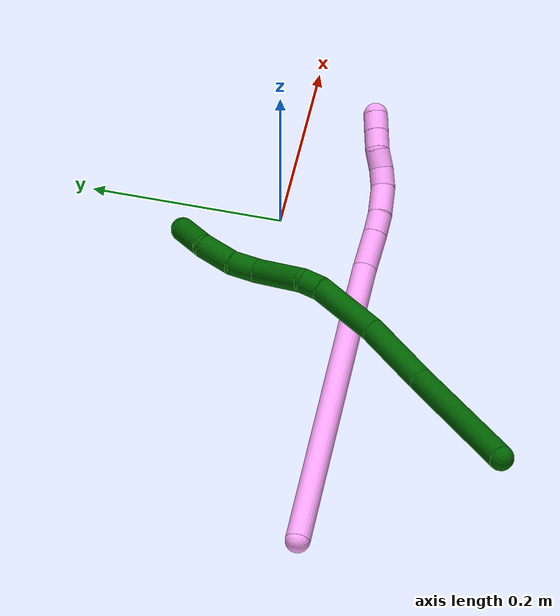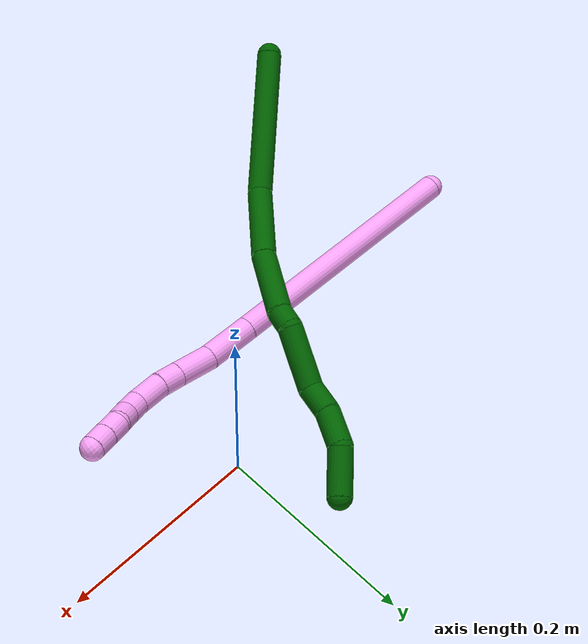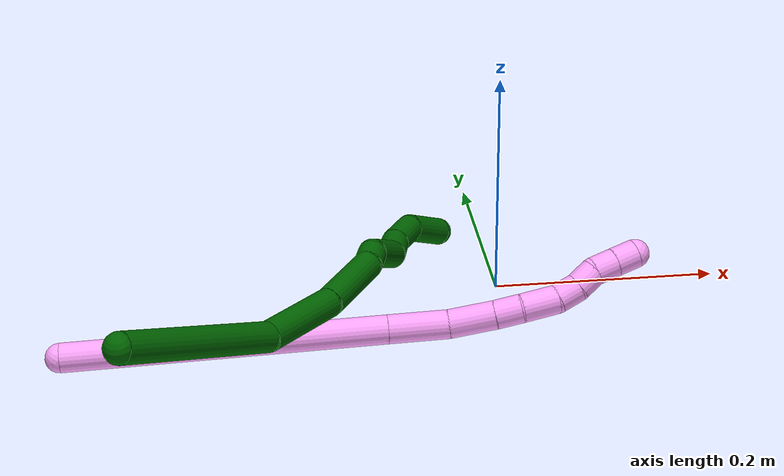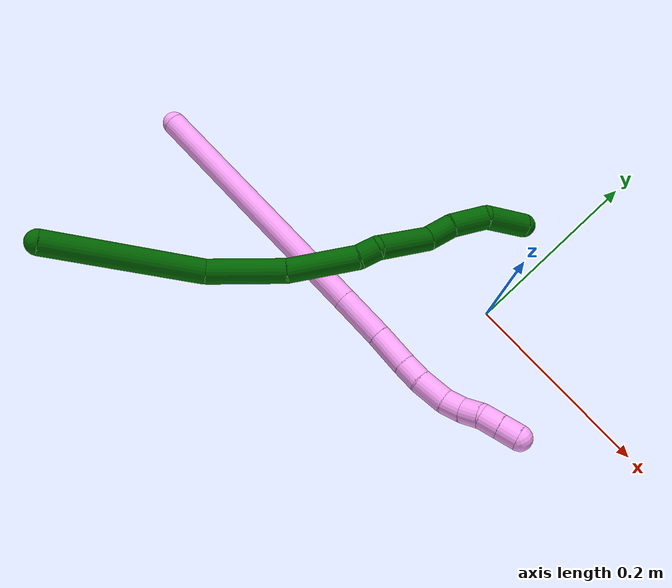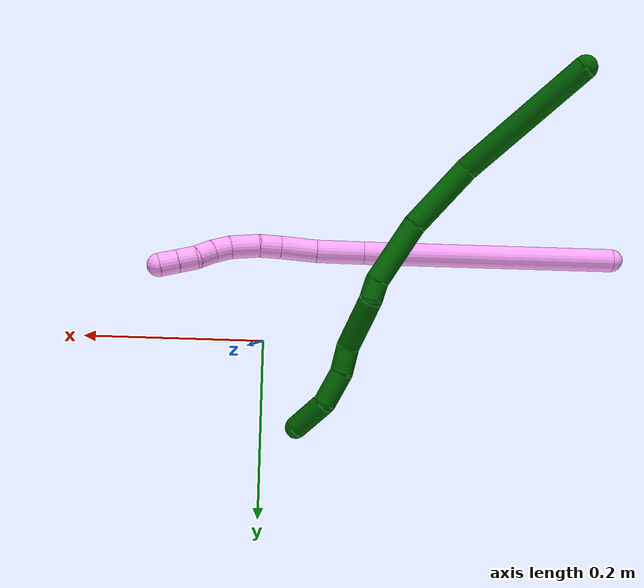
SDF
<sdf version="1.7">
 <world name="default">
  <model name="4">
   <static>0</static>
   <link name="4">
    <collision name="collision-cylinder-e_1_1_4">
     <pose>0.0741 -0.011994 -0.114113 3.03687 0.573415 2.78974</pose>
     <geometry><cylinder><radius>0.0125</radius><length>0.273177</length></cylinder></geometry>
     <surface>
      <friction><ode><mu>1.16</mu><mu2>1.16</mu2><slip1>0</slip1><slip2>0</slip2></ode></friction>
      <contact><ode><kp>1e+06</kp><kd>1</kd><max_vel>0</max_vel><min_depth>0.001</min_depth></ode></contact>
     </surface>
    </collision>
    <visual name="visual-cylinder-e_1_1_4">
     <pose>0.0741 -0.011994 -0.114113 3.03687 0.573415 2.78974</pose>
     <geometry><cylinder><radius>0.0125</radius><length>0.273177</length></cylinder></geometry>
     <material><ambient>1 0.65098 0.996078 1</ambient></material>
    </visual>
    <collision name="collision-cylinder-e_2_4_5">
     <pose>0.162219 -0.026444 -0.249934 3.02897 0.57054 2.76178</pose>
     <geometry><cylinder><radius>0.0125</radius><length>0.051916</length></cylinder></geometry>
     <surface>
      <friction><ode><mu>1.16</mu><mu2>1.16</mu2><slip1>0</slip1><slip2>0</slip2></ode></friction>
      <contact><ode><kp>1e+06</kp><kd>1</kd><max_vel>0</max_vel><min_depth>0.001</min_depth></ode></contact>
     </surface>
    </collision>
    <visual name="visual-cylinder-e_2_4_5">
     <pose>0.162219 -0.026444 -0.249934 3.02897 0.57054 2.76178</pose>
     <geometry><cylinder><radius>0.0125</radius><length>0.051916</length></cylinder></geometry>
     <material><ambient>1 0.65098 0.996078 1</ambient></material>
    </visual>
    <collision name="collision-cylinder-e_3_5_6">
     <pose>0.188518 -0.033521 -0.286885 2.84721 0.656756 2.32071</pose>
     <geometry><cylinder><radius>0.0125</radius><length>0.040225</length></cylinder></geometry>
     <surface>
      <friction><ode><mu>1.16</mu><mu2>1.16</mu2><slip1>0</slip1><slip2>0</slip2></ode></friction>
      <contact><ode><kp>1e+06</kp><kd>1</kd><max_vel>0</max_vel><min_depth>0.001</min_depth></ode></contact>
     </surface>
    </collision>
    <visual name="visual-cylinder-e_3_5_6">
     <pose>0.188518 -0.033521 -0.286885 2.84721 0.656756 2.32071</pose>
     <geometry><cylinder><radius>0.0125</radius><length>0.040225</length></cylinder></geometry>
     <material><ambient>1 0.65098 0.996078 1</ambient></material>
    </visual>
    <collision name="collision-cylinder-e_4_6_7">
     <pose>0.208254 -0.040666 -0.310515 2.84936 0.705275 2.38077</pose>
     <geometry><cylinder><radius>0.0125</radius><length>0.023002</length></cylinder></geometry>
     <surface>
      <friction><ode><mu>1.16</mu><mu2>1.16</mu2><slip1>0</slip1><slip2>0</slip2></ode></friction>
      <contact><ode><kp>1e+06</kp><kd>1</kd><max_vel>0</max_vel><min_depth>0.001</min_depth></ode></contact>
     </surface>
    </collision>
    <visual name="visual-cylinder-e_4_6_7">
     <pose>0.208254 -0.040666 -0.310515 2.84936 0.705275 2.38077</pose>
     <geometry><cylinder><radius>0.0125</radius><length>0.023002</length></cylinder></geometry>
     <material><ambient>1 0.65098 0.996078 1</ambient></material>
    </visual>
    <collision name="collision-cylinder-e_5_7_8">
     <pose>0.226266 -0.044466 -0.330395 3.0309 0.739891 2.85778</pose>
     <geometry><cylinder><radius>0.0125</radius><length>0.031317</length></cylinder></geometry>
     <surface>
      <friction><ode><mu>1.16</mu><mu2>1.16</mu2><slip1>0</slip1><slip2>0</slip2></ode></friction>
      <contact><ode><kp>1e+06</kp><kd>1</kd><max_vel>0</max_vel><min_depth>0.001</min_depth></ode></contact>
     </surface>
    </collision>
    <visual name="visual-cylinder-e_5_7_8">
     <pose>0.226266 -0.044466 -0.330395 3.0309 0.739891 2.85778</pose>
     <geometry><cylinder><radius>0.0125</radius><length>0.031317</length></cylinder></geometry>
     <material><ambient>1 0.65098 0.996078 1</ambient></material>
    </visual>
    <collision name="collision-cylinder-e_6_8_9">
     <pose>0.245359 -0.046019 -0.347251 3.09042 1.00921 3.04898</pose>
     <geometry><cylinder><radius>0.0125</radius><length>0.020168</length></cylinder></geometry>
     <surface>
      <friction><ode><mu>1.16</mu><mu2>1.16</mu2><slip1>0</slip1><slip2>0</slip2></ode></friction>
      <contact><ode><kp>1e+06</kp><kd>1</kd><max_vel>0</max_vel><min_depth>0.001</min_depth></ode></contact>
     </surface>
    </collision>
    <visual name="visual-cylinder-e_6_8_9">
     <pose>0.245359 -0.046019 -0.347251 3.09042 1.00921 3.04898</pose>
     <geometry><cylinder><radius>0.0125</radius><length>0.020168</length></cylinder></geometry>
     <material><ambient>1 0.65098 0.996078 1</ambient></material>
    </visual>
    <collision name="collision-cylinder-e_7_9_10">
     <pose>0.263416 -0.046575 -0.355919 3.05647 1.2356 3.02187</pose>
     <geometry><cylinder><radius>0.0125</radius><length>0.020166</length></cylinder></geometry>
     <surface>
      <friction><ode><mu>1.16</mu><mu2>1.16</mu2><slip1>0</slip1><slip2>0</slip2></ode></friction>
      <contact><ode><kp>1e+06</kp><kd>1</kd><max_vel>0</max_vel><min_depth>0.001</min_depth></ode></contact>
     </surface>
    </collision>
    <visual name="visual-cylinder-e_7_9_10">
     <pose>0.263416 -0.046575 -0.355919 3.05647 1.2356 3.02187</pose>
     <geometry><cylinder><radius>0.0125</radius><length>0.020166</length></cylinder></geometry>
     <material><ambient>1 0.65098 0.996078 1</ambient></material>
    </visual>
    <collision name="collision-cylinder-e_8_10_11">
     <pose>0.280791 -0.046936 -0.365427 3.12884 0.902223 3.11527</pose>
     <geometry><cylinder><radius>0.0125</radius><length>0.020016</length></cylinder></geometry>
     <surface>
      <friction><ode><mu>1.16</mu><mu2>1.16</mu2><slip1>0</slip1><slip2>0</slip2></ode></friction>
      <contact><ode><kp>1e+06</kp><kd>1</kd><max_vel>0</max_vel><min_depth>0.001</min_depth></ode></contact>
     </surface>
    </collision>
    <visual name="visual-cylinder-e_8_10_11">
     <pose>0.280791 -0.046936 -0.365427 3.12884 0.902223 3.11527</pose>
     <geometry><cylinder><radius>0.0125</radius><length>0.020016</length></cylinder></geometry>
     <material><ambient>1 0.65098 0.996078 1</ambient></material>
    </visual>
    <collision name="collision-cylinder-e_9_11_2">
     <pose>0.296466 -0.047119 -0.37787 3.12506 0.897316 3.10726</pose>
     <geometry><cylinder><radius>0.0125</radius><length>0.020013</length></cylinder></geometry>
     <surface>
      <friction><ode><mu>1.16</mu><mu2>1.16</mu2><slip1>0</slip1><slip2>0</slip2></ode></friction>
      <contact><ode><kp>1e+06</kp><kd>1</kd><max_vel>0</max_vel><min_depth>0.001</min_depth></ode></contact>
     </surface>
    </collision>
    <visual name="visual-cylinder-e_9_11_2">
     <pose>0.296466 -0.047119 -0.37787 3.12506 0.897316 3.10726</pose>
     <geometry><cylinder><radius>0.0125</radius><length>0.020013</length></cylinder></geometry>
     <material><ambient>1 0.65098 0.996078 1</ambient></material>
    </visual>
    <collision name="collision-sphere-2">
     <pose>0.304287 -0.047222 -0.38411 0 -0 0</pose>
     <geometry><sphere><radius>0.0125</radius></sphere></geometry>
     <surface>
      <friction><ode><mu>1.16</mu><mu2>1.16</mu2><slip1>0</slip1><slip2>0</slip2></ode></friction>
      <contact><ode><kp>1e+06</kp><kd>1</kd><max_vel>0</max_vel><min_depth>0.001</min_depth></ode></contact>
     </surface>
    </collision>
    <visual name="visual-sphere-2">
     <pose>0.304287 -0.047222 -0.38411 0 -0 0</pose>
     <geometry><sphere><radius>0.0125</radius></sphere></geometry>
     <material><ambient>1 0.65098 0.996078 1</ambient></material>
    </visual>
    <collision name="collision-sphere-11">
     <pose>0.288644 -0.047015 -0.37163 0 -0 0</pose>
     <geometry><sphere><radius>0.0125</radius></sphere></geometry>
     <surface>
      <friction><ode><mu>1.16</mu><mu2>1.16</mu2><slip1>0</slip1><slip2>0</slip2></ode></friction>
      <contact><ode><kp>1e+06</kp><kd>1</kd><max_vel>0</max_vel><min_depth>0.001</min_depth></ode></contact>
     </surface>
    </collision>
    <visual name="visual-sphere-11">
     <pose>0.288644 -0.047015 -0.37163 0 -0 0</pose>
     <geometry><sphere><radius>0.0125</radius></sphere></geometry>
     <material><ambient>1 0.65098 0.996078 1</ambient></material>
    </visual>
    <collision name="collision-sphere-10">
     <pose>0.272938 -0.046857 -0.359224 0 -0 0</pose>
     <geometry><sphere><radius>0.0125</radius></sphere></geometry>
     <surface>
      <friction><ode><mu>1.16</mu><mu2>1.16</mu2><slip1>0</slip1><slip2>0</slip2></ode></friction>
      <contact><ode><kp>1e+06</kp><kd>1</kd><max_vel>0</max_vel><min_depth>0.001</min_depth></ode></contact>
     </surface>
    </collision>
    <visual name="visual-sphere-10">
     <pose>0.272938 -0.046857 -0.359224 0 -0 0</pose>
     <geometry><sphere><radius>0.0125</radius></sphere></geometry>
     <material><ambient>1 0.65098 0.996078 1</ambient></material>
    </visual>
    <collision name="collision-sphere-9">
     <pose>0.253894 -0.046293 -0.352614 0 -0 0</pose>
     <geometry><sphere><radius>0.0125</radius></sphere></geometry>
     <surface>
      <friction><ode><mu>1.16</mu><mu2>1.16</mu2><slip1>0</slip1><slip2>0</slip2></ode></friction>
      <contact><ode><kp>1e+06</kp><kd>1</kd><max_vel>0</max_vel><min_depth>0.001</min_depth></ode></contact>
     </surface>
    </collision>
    <visual name="visual-sphere-9">
     <pose>0.253894 -0.046293 -0.352614 0 -0 0</pose>
     <geometry><sphere><radius>0.0125</radius></sphere></geometry>
     <material><ambient>1 0.65098 0.996078 1</ambient></material>
    </visual>
    <collision name="collision-sphere-4">
     <pose>0.1482 -0.023989 -0.228226 0 -0 0</pose>
     <geometry><sphere><radius>0.0125</radius></sphere></geometry>
     <surface>
      <friction><ode><mu>1.16</mu><mu2>1.16</mu2><slip1>0</slip1><slip2>0</slip2></ode></friction>
      <contact><ode><kp>1e+06</kp><kd>1</kd><max_vel>0</max_vel><min_depth>0.001</min_depth></ode></contact>
     </surface>
    </collision>
    <visual name="visual-sphere-4">
     <pose>0.1482 -0.023989 -0.228226 0 -0 0</pose>
     <geometry><sphere><radius>0.0125</radius></sphere></geometry>
     <material><ambient>1 0.65098 0.996078 1</ambient></material>
    </visual>
    <collision name="collision-sphere-1">
     <geometry><sphere><radius>0.0125</radius></sphere></geometry>
     <surface>
      <friction><ode><mu>1.16</mu><mu2>1.16</mu2><slip1>0</slip1><slip2>0</slip2></ode></friction>
      <contact><ode><kp>1e+06</kp><kd>1</kd><max_vel>0</max_vel><min_depth>0.001</min_depth></ode></contact>
     </surface>
    </collision>
    <visual name="visual-sphere-1">
     <geometry><sphere><radius>0.0125</radius></sphere></geometry>
     <material><ambient>1 0.65098 0.996078 1</ambient></material>
    </visual>
    <collision name="collision-sphere-8">
     <pose>0.236823 -0.045744 -0.341888 0 -0 0</pose>
     <geometry><sphere><radius>0.0125</radius></sphere></geometry>
     <surface>
      <friction><ode><mu>1.16</mu><mu2>1.16</mu2><slip1>0</slip1><slip2>0</slip2></ode></friction>
      <contact><ode><kp>1e+06</kp><kd>1</kd><max_vel>0</max_vel><min_depth>0.001</min_depth></ode></contact>
     </surface>
    </collision>
    <visual name="visual-sphere-8">
     <pose>0.236823 -0.045744 -0.341888 0 -0 0</pose>
     <geometry><sphere><radius>0.0125</radius></sphere></geometry>
     <material><ambient>1 0.65098 0.996078 1</ambient></material>
    </visual>
    <collision name="collision-sphere-5">
     <pose>0.176239 -0.028899 -0.271642 0 -0 0</pose>
     <geometry><sphere><radius>0.0125</radius></sphere></geometry>
     <surface>
      <friction><ode><mu>1.16</mu><mu2>1.16</mu2><slip1>0</slip1><slip2>0</slip2></ode></friction>
      <contact><ode><kp>1e+06</kp><kd>1</kd><max_vel>0</max_vel><min_depth>0.001</min_depth></ode></contact>
     </surface>
    </collision>
    <visual name="visual-sphere-5">
     <pose>0.176239 -0.028899 -0.271642 0 -0 0</pose>
     <geometry><sphere><radius>0.0125</radius></sphere></geometry>
     <material><ambient>1 0.65098 0.996078 1</ambient></material>
    </visual>
    <collision name="collision-sphere-6">
     <pose>0.200798 -0.038143 -0.302129 0 -0 0</pose>
     <geometry><sphere><radius>0.0125</radius></sphere></geometry>
     <surface>
      <friction><ode><mu>1.16</mu><mu2>1.16</mu2><slip1>0</slip1><slip2>0</slip2></ode></friction>
      <contact><ode><kp>1e+06</kp><kd>1</kd><max_vel>0</max_vel><min_depth>0.001</min_depth></ode></contact>
     </surface>
    </collision>
    <visual name="visual-sphere-6">
     <pose>0.200798 -0.038143 -0.302129 0 -0 0</pose>
     <geometry><sphere><radius>0.0125</radius></sphere></geometry>
     <material><ambient>1 0.65098 0.996078 1</ambient></material>
    </visual>
    <collision name="collision-sphere-7">
     <pose>0.215709 -0.043189 -0.318901 0 -0 0</pose>
     <geometry><sphere><radius>0.0125</radius></sphere></geometry>
     <surface>
      <friction><ode><mu>1.16</mu><mu2>1.16</mu2><slip1>0</slip1><slip2>0</slip2></ode></friction>
      <contact><ode><kp>1e+06</kp><kd>1</kd><max_vel>0</max_vel><min_depth>0.001</min_depth></ode></contact>
     </surface>
    </collision>
    <visual name="visual-sphere-7">
     <pose>0.215709 -0.043189 -0.318901 0 -0 0</pose>
     <geometry><sphere><radius>0.0125</radius></sphere></geometry>
     <material><ambient>1 0.65098 0.996078 1</ambient></material>
    </visual>
    <inertial>
     <pose>0.139875 -0.024151 -0.204471 0 -0 0</pose>
     <mass>0.5</mass>
     <inertia>
      <ixx>-0.00084</ixx>
      <ixy>0</ixy>
      <ixz>0</ixz>
      <iyy>0.00216</iyy>
      <iyz>0</iyz>
      <izz>-0.000824</izz>
     </inertia>
    </inertial>
   </link>
   <pose>-0.38218 -0.100158 0.011498 -0.863412 -0.760979 0.765434</pose>
  </model>
  <model name="6">
   <static>0</static>
   <link name="6">
    <collision name="collision-cylinder-e_1_1_4">
     <pose>0.052013 0.039598 -0.039987 -2.36108 0.746056 -1.52096</pose>
     <geometry><cylinder><radius>0.0125</radius><length>0.153262</length></cylinder></geometry>
     <surface>
      <friction><ode><mu>1.16</mu><mu2>1.16</mu2><slip1>0</slip1><slip2>0</slip2></ode></friction>
      <contact><ode><kp>1e+06</kp><kd>1</kd><max_vel>0</max_vel><min_depth>0.001</min_depth></ode></contact>
     </surface>
    </collision>
    <visual name="visual-cylinder-e_1_1_4">
     <pose>0.052013 0.039598 -0.039987 -2.36108 0.746056 -1.52096</pose>
     <geometry><cylinder><radius>0.0125</radius><length>0.153262</length></cylinder></geometry>
     <material><ambient>0 0.392157 0.003922 1</ambient></material>
    </visual>
    <collision name="collision-cylinder-e_2_4_5">
     <pose>0.13025 0.106658 -0.0905 -1.93685 0.728194 -1.01214</pose>
     <geometry><cylinder><radius>0.0125</radius><length>0.078807</length></cylinder></geometry>
     <surface>
      <friction><ode><mu>1.16</mu><mu2>1.16</mu2><slip1>0</slip1><slip2>0</slip2></ode></friction>
      <contact><ode><kp>1e+06</kp><kd>1</kd><max_vel>0</max_vel><min_depth>0.001</min_depth></ode></contact>
     </surface>
    </collision>
    <visual name="visual-cylinder-e_2_4_5">
     <pose>0.13025 0.106658 -0.0905 -1.93685 0.728194 -1.01214</pose>
     <geometry><cylinder><radius>0.0125</radius><length>0.078807</length></cylinder></geometry>
     <material><ambient>0 0.392157 0.003922 1</ambient></material>
    </visual>
    <collision name="collision-cylinder-e_3_5_6">
     <pose>0.175827 0.163096 -0.108136 -1.81138 0.57542 -0.721564</pose>
     <geometry><cylinder><radius>0.0125</radius><length>0.071128</length></cylinder></geometry>
     <surface>
      <friction><ode><mu>1.16</mu><mu2>1.16</mu2><slip1>0</slip1><slip2>0</slip2></ode></friction>
      <contact><ode><kp>1e+06</kp><kd>1</kd><max_vel>0</max_vel><min_depth>0.001</min_depth></ode></contact>
     </surface>
    </collision>
    <visual name="visual-cylinder-e_3_5_6">
     <pose>0.175827 0.163096 -0.108136 -1.81138 0.57542 -0.721564</pose>
     <geometry><cylinder><radius>0.0125</radius><length>0.071128</length></cylinder></geometry>
     <material><ambient>0 0.392157 0.003922 1</ambient></material>
    </visual>
    <collision name="collision-cylinder-e_4_6_7">
     <pose>0.198221 0.201758 -0.117397 -1.78941 0.297392 -0.369218</pose>
     <geometry><cylinder><radius>0.0125</radius><length>0.020751</length></cylinder></geometry>
     <surface>
      <friction><ode><mu>1.16</mu><mu2>1.16</mu2><slip1>0</slip1><slip2>0</slip2></ode></friction>
      <contact><ode><kp>1e+06</kp><kd>1</kd><max_vel>0</max_vel><min_depth>0.001</min_depth></ode></contact>
     </surface>
    </collision>
    <visual name="visual-cylinder-e_4_6_7">
     <pose>0.198221 0.201758 -0.117397 -1.78941 0.297392 -0.369218</pose>
     <geometry><cylinder><radius>0.0125</radius><length>0.020751</length></cylinder></geometry>
     <material><ambient>0 0.392157 0.003922 1</ambient></material>
    </visual>
    <collision name="collision-cylinder-e_5_7_8">
     <pose>0.211448 0.232836 -0.139281 -2.31582 0.336652 -0.740098</pose>
     <geometry><cylinder><radius>0.0125</radius><length>0.061672</length></cylinder></geometry>
     <surface>
      <friction><ode><mu>1.16</mu><mu2>1.16</mu2><slip1>0</slip1><slip2>0</slip2></ode></friction>
      <contact><ode><kp>1e+06</kp><kd>1</kd><max_vel>0</max_vel><min_depth>0.001</min_depth></ode></contact>
     </surface>
    </collision>
    <visual name="visual-cylinder-e_5_7_8">
     <pose>0.211448 0.232836 -0.139281 -2.31582 0.336652 -0.740098</pose>
     <geometry><cylinder><radius>0.0125</radius><length>0.061672</length></cylinder></geometry>
     <material><ambient>0 0.392157 0.003922 1</ambient></material>
    </visual>
    <collision name="collision-cylinder-e_6_8_9">
     <pose>0.224808 0.267745 -0.163357 -1.88173 0.22004 -0.300769</pose>
     <geometry><cylinder><radius>0.0125</radius><length>0.029092</length></cylinder></geometry>
     <surface>
      <friction><ode><mu>1.16</mu><mu2>1.16</mu2><slip1>0</slip1><slip2>0</slip2></ode></friction>
      <contact><ode><kp>1e+06</kp><kd>1</kd><max_vel>0</max_vel><min_depth>0.001</min_depth></ode></contact>
     </surface>
    </collision>
    <visual name="visual-cylinder-e_6_8_9">
     <pose>0.224808 0.267745 -0.163357 -1.88173 0.22004 -0.300769</pose>
     <geometry><cylinder><radius>0.0125</radius><length>0.029092</length></cylinder></geometry>
     <material><ambient>0 0.392157 0.003922 1</ambient></material>
    </visual>
    <collision name="collision-cylinder-e_7_9_10">
     <pose>0.236817 0.297239 -0.173498 -1.91884 0.479261 -0.670768</pose>
     <geometry><cylinder><radius>0.0125</radius><length>0.038315</length></cylinder></geometry>
     <surface>
      <friction><ode><mu>1.16</mu><mu2>1.16</mu2><slip1>0</slip1><slip2>0</slip2></ode></friction>
      <contact><ode><kp>1e+06</kp><kd>1</kd><max_vel>0</max_vel><min_depth>0.001</min_depth></ode></contact>
     </surface>
    </collision>
    <visual name="visual-cylinder-e_7_9_10">
     <pose>0.236817 0.297239 -0.173498 -1.91884 0.479261 -0.670768</pose>
     <geometry><cylinder><radius>0.0125</radius><length>0.038315</length></cylinder></geometry>
     <material><ambient>0 0.392157 0.003922 1</ambient></material>
    </visual>
    <collision name="collision-cylinder-e_8_10_2">
     <pose>0.260254 0.325094 -0.193344 -2.43985 0.670992 -1.52228</pose>
     <geometry><cylinder><radius>0.0125</radius><length>0.046974</length></cylinder></geometry>
     <surface>
      <friction><ode><mu>1.16</mu><mu2>1.16</mu2><slip1>0</slip1><slip2>0</slip2></ode></friction>
      <contact><ode><kp>1e+06</kp><kd>1</kd><max_vel>0</max_vel><min_depth>0.001</min_depth></ode></contact>
     </surface>
    </collision>
    <visual name="visual-cylinder-e_8_10_2">
     <pose>0.260254 0.325094 -0.193344 -2.43985 0.670992 -1.52228</pose>
     <geometry><cylinder><radius>0.0125</radius><length>0.046974</length></cylinder></geometry>
     <material><ambient>0 0.392157 0.003922 1</ambient></material>
    </visual>
    <collision name="collision-sphere-2">
     <pose>0.274858 0.336969 -0.207393 0 -0 0</pose>
     <geometry><sphere><radius>0.0125</radius></sphere></geometry>
     <surface>
      <friction><ode><mu>1.16</mu><mu2>1.16</mu2><slip1>0</slip1><slip2>0</slip2></ode></friction>
      <contact><ode><kp>1e+06</kp><kd>1</kd><max_vel>0</max_vel><min_depth>0.001</min_depth></ode></contact>
     </surface>
    </collision>
    <visual name="visual-sphere-2">
     <pose>0.274858 0.336969 -0.207393 0 -0 0</pose>
     <geometry><sphere><radius>0.0125</radius></sphere></geometry>
     <material><ambient>0 0.392157 0.003922 1</ambient></material>
    </visual>
    <collision name="collision-sphere-10">
     <pose>0.245651 0.313219 -0.179295 0 -0 0</pose>
     <geometry><sphere><radius>0.0125</radius></sphere></geometry>
     <surface>
      <friction><ode><mu>1.16</mu><mu2>1.16</mu2><slip1>0</slip1><slip2>0</slip2></ode></friction>
      <contact><ode><kp>1e+06</kp><kd>1</kd><max_vel>0</max_vel><min_depth>0.001</min_depth></ode></contact>
     </surface>
    </collision>
    <visual name="visual-sphere-10">
     <pose>0.245651 0.313219 -0.179295 0 -0 0</pose>
     <geometry><sphere><radius>0.0125</radius></sphere></geometry>
     <material><ambient>0 0.392157 0.003922 1</ambient></material>
    </visual>
    <collision name="collision-sphere-9">
     <pose>0.227983 0.28126 -0.1677 0 -0 0</pose>
     <geometry><sphere><radius>0.0125</radius></sphere></geometry>
     <surface>
      <friction><ode><mu>1.16</mu><mu2>1.16</mu2><slip1>0</slip1><slip2>0</slip2></ode></friction>
      <contact><ode><kp>1e+06</kp><kd>1</kd><max_vel>0</max_vel><min_depth>0.001</min_depth></ode></contact>
     </surface>
    </collision>
    <visual name="visual-sphere-9">
     <pose>0.227983 0.28126 -0.1677 0 -0 0</pose>
     <geometry><sphere><radius>0.0125</radius></sphere></geometry>
     <material><ambient>0 0.392157 0.003922 1</ambient></material>
    </visual>
    <collision name="collision-sphere-4">
     <pose>0.104026 0.079196 -0.079973 0 -0 0</pose>
     <geometry><sphere><radius>0.0125</radius></sphere></geometry>
     <surface>
      <friction><ode><mu>1.16</mu><mu2>1.16</mu2><slip1>0</slip1><slip2>0</slip2></ode></friction>
      <contact><ode><kp>1e+06</kp><kd>1</kd><max_vel>0</max_vel><min_depth>0.001</min_depth></ode></contact>
     </surface>
    </collision>
    <visual name="visual-sphere-4">
     <pose>0.104026 0.079196 -0.079973 0 -0 0</pose>
     <geometry><sphere><radius>0.0125</radius></sphere></geometry>
     <material><ambient>0 0.392157 0.003922 1</ambient></material>
    </visual>
    <collision name="collision-sphere-1">
     <geometry><sphere><radius>0.0125</radius></sphere></geometry>
     <surface>
      <friction><ode><mu>1.16</mu><mu2>1.16</mu2><slip1>0</slip1><slip2>0</slip2></ode></friction>
      <contact><ode><kp>1e+06</kp><kd>1</kd><max_vel>0</max_vel><min_depth>0.001</min_depth></ode></contact>
     </surface>
    </collision>
    <visual name="visual-sphere-1">
     <geometry><sphere><radius>0.0125</radius></sphere></geometry>
     <material><ambient>0 0.392157 0.003922 1</ambient></material>
    </visual>
    <collision name="collision-sphere-8">
     <pose>0.221634 0.254231 -0.159014 0 -0 0</pose>
     <geometry><sphere><radius>0.0125</radius></sphere></geometry>
     <surface>
      <friction><ode><mu>1.16</mu><mu2>1.16</mu2><slip1>0</slip1><slip2>0</slip2></ode></friction>
      <contact><ode><kp>1e+06</kp><kd>1</kd><max_vel>0</max_vel><min_depth>0.001</min_depth></ode></contact>
     </surface>
    </collision>
    <visual name="visual-sphere-8">
     <pose>0.221634 0.254231 -0.159014 0 -0 0</pose>
     <geometry><sphere><radius>0.0125</radius></sphere></geometry>
     <material><ambient>0 0.392157 0.003922 1</ambient></material>
    </visual>
    <collision name="collision-sphere-5">
     <pose>0.156474 0.134119 -0.101027 0 -0 0</pose>
     <geometry><sphere><radius>0.0125</radius></sphere></geometry>
     <surface>
      <friction><ode><mu>1.16</mu><mu2>1.16</mu2><slip1>0</slip1><slip2>0</slip2></ode></friction>
      <contact><ode><kp>1e+06</kp><kd>1</kd><max_vel>0</max_vel><min_depth>0.001</min_depth></ode></contact>
     </surface>
    </collision>
    <visual name="visual-sphere-5">
     <pose>0.156474 0.134119 -0.101027 0 -0 0</pose>
     <geometry><sphere><radius>0.0125</radius></sphere></geometry>
     <material><ambient>0 0.392157 0.003922 1</ambient></material>
    </visual>
    <collision name="collision-sphere-6">
     <pose>0.195181 0.192074 -0.115245 0 -0 0</pose>
     <geometry><sphere><radius>0.0125</radius></sphere></geometry>
     <surface>
      <friction><ode><mu>1.16</mu><mu2>1.16</mu2><slip1>0</slip1><slip2>0</slip2></ode></friction>
      <contact><ode><kp>1e+06</kp><kd>1</kd><max_vel>0</max_vel><min_depth>0.001</min_depth></ode></contact>
     </surface>
    </collision>
    <visual name="visual-sphere-6">
     <pose>0.195181 0.192074 -0.115245 0 -0 0</pose>
     <geometry><sphere><radius>0.0125</radius></sphere></geometry>
     <material><ambient>0 0.392157 0.003922 1</ambient></material>
    </visual>
    <collision name="collision-sphere-7">
     <pose>0.201261 0.211442 -0.119548 0 -0 0</pose>
     <geometry><sphere><radius>0.0125</radius></sphere></geometry>
     <surface>
      <friction><ode><mu>1.16</mu><mu2>1.16</mu2><slip1>0</slip1><slip2>0</slip2></ode></friction>
      <contact><ode><kp>1e+06</kp><kd>1</kd><max_vel>0</max_vel><min_depth>0.001</min_depth></ode></contact>
     </surface>
    </collision>
    <visual name="visual-sphere-7">
     <pose>0.201261 0.211442 -0.119548 0 -0 0</pose>
     <geometry><sphere><radius>0.0125</radius></sphere></geometry>
     <material><ambient>0 0.392157 0.003922 1</ambient></material>
    </visual>
    <inertial>
     <pose>0.15147 0.15814 -0.104919 0 -0 0</pose>
     <mass>0.5</mass>
     <inertia>
      <ixx>-0.000202</ixx>
      <ixy>0</ixy>
      <ixz>0</ixz>
      <iyy>-0.00012</iyy>
      <iyz>0</iyz>
      <izz>-0.000534</izz>
     </inertia>
    </inertial>
   </link>
   <pose>-0.319463 -0.282399 0.122338 0.20437 -0.085085 0.016199</pose>
  </model>
 </world>
</sdf>
